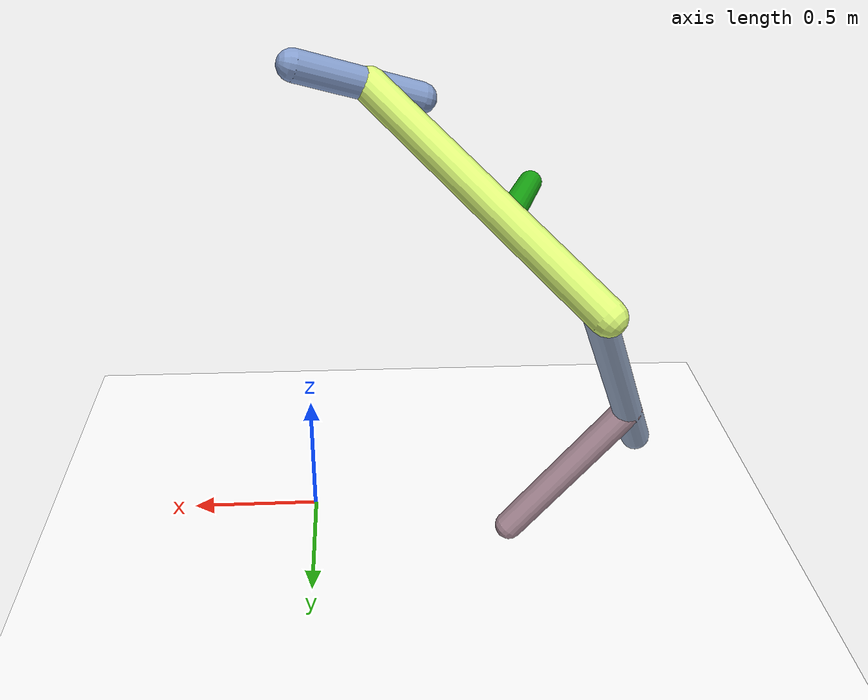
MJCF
<mujoco model="morphology">
  <option timestep="0.01"/>
  <default>
    <default class="/"/>
    <default class="0/"/>
    <default class="0/1/"/>
    <default class="0/1/2/"/>
    <default class="0/1/2/3/"/>
    <default class="0/1/4/"/>
  </default>
  <asset>
    <texture name="texplane" type="2d" builtin="checker" rgb1="0.10000000000000001 0.20000000000000001 0.29999999999999999" rgb2="0.20000000000000001 0.29999999999999999 0.40000000000000002" width="300" height="300"/>
    <material name="MatPlane" class="/" texture="texplane" texrepeat="20 20" specular="1" shininess="1" reflectance="0.5"/>
  </asset>
  <worldbody>
    <light name="//unnamed_light_0" class="/" directional="true" pos="0 0 1.5" dir="0 0 -1.3" cutoff="100" exponent="1" diffuse="1 1 1" specular="0.10000000000000001 0.10000000000000001 0.10000000000000001"/>
    <geom name="ground" class="/" type="plane" size="15 15 0.5" material="MatPlane" rgba="1 1 1 1"/>
    <site name="body" class="/" size="9.9999999999999995e-07 9.9999999999999995e-07 9.9999999999999995e-07" pos="0 0 1.8326958179473878"/>
    <body pos="0 0 1.8326958179473878" name="0/">
      <freejoint name="0/"/>
      <geom name="0/geom" class="0/" type="capsule" contype="1" conaffinity="1" condim="3" size="0.056336503868757944" rgba="0.51586993821538762 0.61249467600173113 0.79622961463894038 1" friction="0.59999999999999998 0.10000000000000001 0.10000000000000001" fromto="0 0 0 -0.43156729249210818 -0.12117074761130098 -0.15046444284141547"/>
      <site name="0/end0" class="0/" size="0.0050000000000000001" pos="-0.43156729249210818 -0.12117074761130098 -0.15046444284141547"/>
      <site name="0/attach1" class="0/" size="9.9999999999999995e-07 9.9999999999999995e-07 9.9999999999999995e-07" pos="-0.25242642817930977 -0.070873533632988789 -0.088007600518389531"/>
      <body pos="-0.25242642817930977 -0.070873533632988789 -0.088007600518389531" name="0/1/">
        <joint name="0/1/joint/" class="0/" type="hinge" axis="0 0 1" limited="true" range="-47.766716354235307 47.766716354235307"/>
        <geom name="0/1/geom" class="0/1/" type="capsule" contype="1" conaffinity="1" condim="3" size="0.063706996767526392" rgba="0.85477594510078159 0.98047718480625101 0.46260916157016541 1" friction="0.59999999999999998 0.10000000000000001 0.10000000000000001" fromto="0 0 0 -0.72107445991919961 0.67867791697864366 -0.5461494859470013"/>
        <site name="0/1/end1" class="0/1/" size="0.0050000000000000001" pos="-0.72107445991919961 0.67867791697864366 -0.5461494859470013"/>
        <site name="0/1/attach2" class="0/1/" size="9.9999999999999995e-07 9.9999999999999995e-07 9.9999999999999995e-07" pos="-0.68761960971353808 0.64719008969801139 -0.5208104256170828"/>
        <body pos="-0.68761960971353808 0.64719008969801139 -0.5208104256170828" name="0/1/2/">
          <joint name="0/1/2/joint/" class="0/1/" type="hinge" axis="0 0.62693732136325564 0.77906969847496021" limited="true" range="-56.100287347911099 56.100287347911099"/>
          <geom name="0/1/2/geom" class="0/1/2/" type="capsule" contype="1" conaffinity="1" condim="3" size="0.053043907416873759" rgba="0.60600735552925122 0.67594450006045426 0.79038586049161919 1" friction="0.59999999999999998 0.10000000000000001 0.10000000000000001" fromto="0 0 0 -0.29225928404024504 -0.33219860461701373 -0.74099356337821343"/>
          <site name="0/1/2/end2" class="0/1/2/" size="0.0050000000000000001" pos="-0.29225928404024504 -0.33219860461701373 -0.74099356337821343"/>
          <site name="0/1/2/attach3" class="0/1/2/" size="9.9999999999999995e-07 9.9999999999999995e-07 9.9999999999999995e-07" pos="-0.22861567318255083 -0.25985763933632522 -0.57963168859443348"/>
          <body pos="-0.22861567318255083 -0.25985763933632522 -0.57963168859443348" name="0/1/2/3/">
            <joint name="0/1/2/3/joint/" class="0/1/2/" type="hinge" axis="-5.5511151231257827e-17 -0.91249595886582324 0.40908571846685382" limited="true" range="-34.955247133298805 34.955247133298805"/>
            <geom name="0/1/2/3/geom" class="0/1/2/3/" type="capsule" contype="1" conaffinity="1" condim="3" size="0.054040971527308093" rgba="0.71262871134664996 0.58466625759809698 0.63437658733802837 1" friction="0.59999999999999998 0.10000000000000001 0.10000000000000001" fromto="0 0 0 0.40160477413835327 -0.025147401928936275 -0.54424609170085891"/>
            <site name="0/1/2/3/end3" class="0/1/2/3/" size="0.0050000000000000001" pos="0.40160477413835327 -0.025147401928936275 -0.54424609170085891"/>
          </body>
        </body>
        <site name="0/1/attach4" class="0/1/" size="9.9999999999999995e-07 9.9999999999999995e-07 9.9999999999999995e-07" pos="-0.43246917367547411 0.40704156680356585 -0.32755676427265407"/>
        <body pos="-0.43246917367547411 0.40704156680356585 -0.32755676427265407" name="0/1/4/">
          <joint name="0/1/4/joint/" class="0/1/" type="hinge" axis="0 0.62693732136325564 0.77906969847496021" limited="true" range="-44.227890075155798 44.227890075155798"/>
          <geom name="0/1/4/geom" class="0/1/4/" type="capsule" contype="1" conaffinity="1" condim="3" size="0.046020311166298025" rgba="0.11247287981213705 0.71702080662030421 0.091753527426313819 1" friction="0.59999999999999998 0.10000000000000001 0.10000000000000001" fromto="0 0 0 -0.20093127839928582 -0.73777268498444371 -0.16214292941306652"/>
          <site name="0/1/4/end4" class="0/1/4/" size="0.0050000000000000001" pos="-0.20093127839928582 -0.73777268498444371 -0.16214292941306652"/>
        </body>
      </body>
      <camera name="0/iso" class="0/" mode="trackcom" pos="-2.2999999999999998 -2.2999999999999998 1" xyaxes="0.45000000000000001 -0.45000000000000001 0 0.29999999999999999 0.14999999999999999 0.93999999999999995"/>
    </body>
  </worldbody>
  <actuator>
    <motor name="0/1/motor" class="0/1/" ctrllimited="true" ctrlrange="-1 1" gear="93" joint="0/1/joint/"/>
    <motor name="0/1/2/motor" class="0/1/2/" ctrllimited="true" ctrlrange="-1 1" gear="64" joint="0/1/2/joint/"/>
    <motor name="0/1/2/3/motor" class="0/1/2/3/" ctrllimited="true" ctrlrange="-1 1" gear="89" joint="0/1/2/3/joint/"/>
    <motor name="0/1/4/motor" class="0/1/4/" ctrllimited="true" ctrlrange="-1 1" gear="64" joint="0/1/4/joint/"/>
  </actuator>
  <sensor>
    <subtreelinvel name="velocity" body="0/"/>
  </sensor>
</mujoco>
